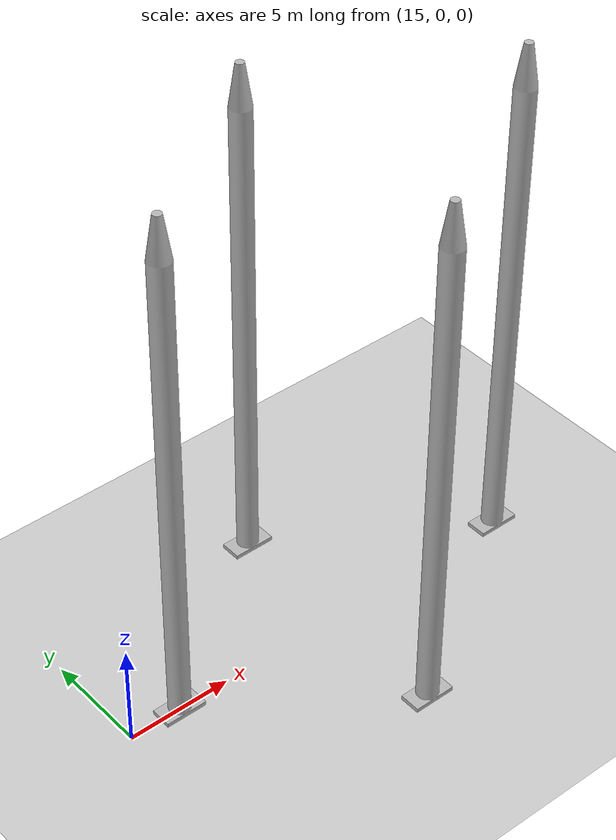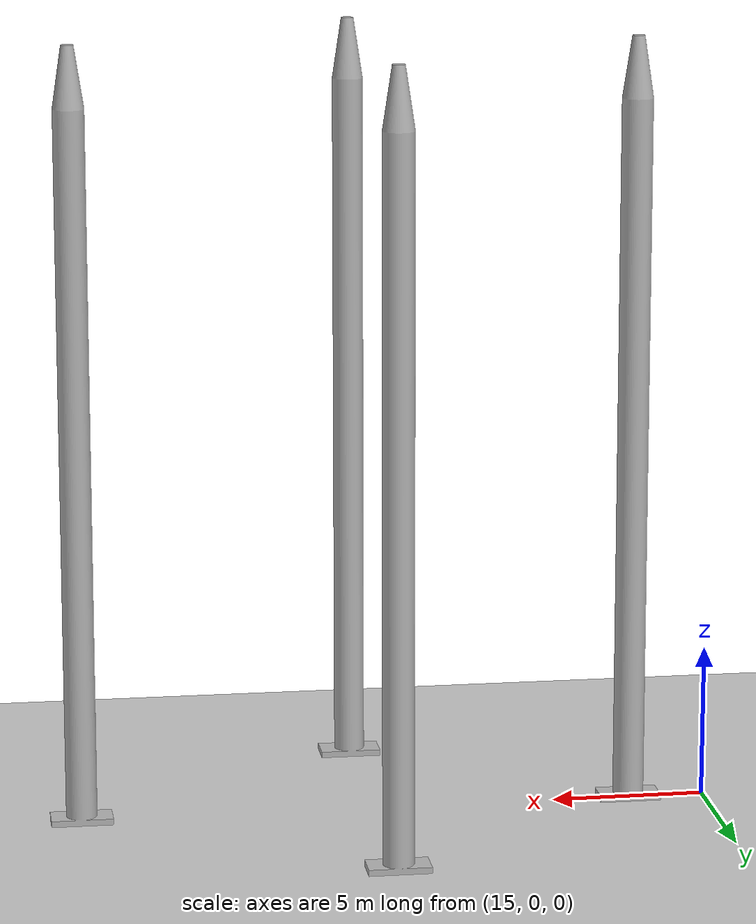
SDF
<sdf version="1.5">
 <world name="default">
  <include><uri>model://sun</uri></include>
  <include><uri>model://ground_plane</uri></include>
  <include><uri>model://pencil</uri><name>pillar_12_0</name><pose>17.5 0 0 0 0 0</pose></include>
  <include><uri>model://pencil</uri><name>pillar_21_07</name><pose>26 6 0 0 0 0</pose></include>
  <include><uri>model://pencil</uri><name>pillar_21_-07</name><pose>26 -6 0 0 0 0</pose></include>
  <include><uri>model://pencil</uri><name>pillar_30_0</name><pose>35.5 0 0 0 0 0</pose></include>
  <physics name="default_physics" default="0" type="ode">
   <gravity>0 0 -9.8066</gravity>
   <ode>
    <solver>
     <type>quick</type>
     <iters>10</iters>
     <sor>1.3</sor>
     <use_dynamic_moi_rescaling>0</use_dynamic_moi_rescaling>
    </solver>
    <constraints>
     <cfm>0</cfm>
     <erp>0.2</erp>
     <contact_max_correcting_vel>100</contact_max_correcting_vel>
     <contact_surface_layer>0.001</contact_surface_layer>
    </constraints>
   </ode>
   <max_step_size>0.004</max_step_size>
   <real_time_factor>1</real_time_factor>
   <real_time_update_rate>250</real_time_update_rate>
   <magnetic_field>6.0e-6 2.3e-5 -4.2e-5</magnetic_field>
  </physics>
 </world>
</sdf>

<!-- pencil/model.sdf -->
<sdf version="1.4">
  <model name="my_model">
    <pose>0 0 0 0 0 0</pose>
    <static>false</static>
    <link name="link">

      <collision name="pencil_collision">
        <geometry>
          <mesh>
          <uri>model://pencil/mashes/pencil.dae</uri>
	   <scale>1 1 1</scale>
          </mesh>
        </geometry>
      </collision>
      <visual name="visual">
        <geometry>
          <mesh>
          <uri>model://pencil/mashes/pencil.dae</uri>
	   <scale>1 1 1</scale>
          </mesh>
        </geometry>
      </visual>
    </link>
  </model>
</sdf>
